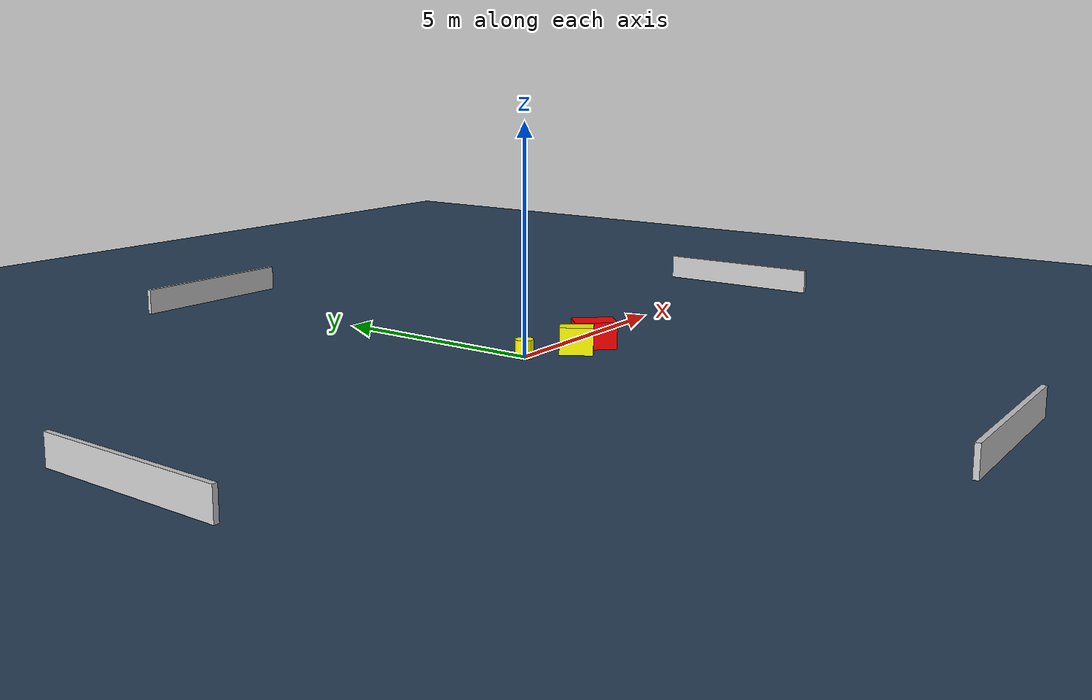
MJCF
<?xml version="1.0" ?>
<mujoco model="generated_environment">
  <option timestep="0.01" integrator="RK4" cone="elliptic"/>
  <default>
    <geom density="1"/>
  </default>
  <asset>
    <texture builtin="gradient" height="3072" name="skybox" rgb1="0.3 0.5 0.7" rgb2="0 0 0" type="skybox" width="512"/>
    <texture builtin="checker" height="300" name="groundplane" rgb1="0.2 0.3 0.4" rgb2="0.1 0.2 0.3" type="2d" width="300"/>
    <material name="groundplane" reflectance="0.2" texrepeat="5 5" texture="groundplane"/>
  </asset>
  <worldbody>
    <light dir="0 0 -1" directional="true" pos="0 0 1.5"/>
    <geom condim="3" friction="0.5 0.005 0.001" material="groundplane" name="floor" pos="0 0 0" size="0 0 0.05" type="plane"/>
    <body name="walls">
      <geom name="wall_1" condim="4" pos="-10.0 0.0 0.3" rgba="0.800000011920929 0.800000011920929 0.800000011920929 1.0" size="0.05 2.0 0.3" type="box"/>
      <geom name="wall_2" condim="4" pos="10.0 0.0 0.3" rgba="0.800000011920929 0.800000011920929 0.800000011920929 1.0" size="0.05 2.0 0.3" type="box"/>
      <geom name="wall_3" condim="4" pos="0.0 -10.0 0.3" rgba="0.800000011920929 0.800000011920929 0.800000011920929 1.0" size="2.0 0.05 0.3" type="box"/>
      <geom name="wall_4" condim="4" pos="0.0 10.0 0.3" rgba="0.800000011920929 0.800000011920929 0.800000011920929 1.0" size="2.0 0.05 0.3" type="box"/>
    </body>
    <body name="robot">
      <joint name="joint_x" type="slide" pos="0 0 0" axis="1 0 0"/>
      <joint name="joint_y" type="slide" pos="0 0 0" axis="0 1 0"/>
      <geom name="robot" type="cylinder" pos="0.0 0.0 0.2" size="0.2 0.2 0.0" mass="5.0" friction="1.0 0.005 0.0001" condim="4" rgba="1.0 1.0 0.0 1.0"/>
    </body>
    <body name="obstacle_1_movable">
      <geom name="obstacle_1_movable" condim="4" pos="0.9422238064543365 -0.7017446565099826 0.3" euler="0 0 211.17559261854208" friction="0.0 0.005 0.001" rgba="1.0 1.0 0.0 1.0" size="0.20207541813775684 0.36610931960170845 0.3" type="box" mass="0.1"/>
      <joint type="free"/>
    </body>
    <body name="obstacle_2_static">
      <geom name="obstacle_2_static" condim="4" pos="1.6499789819377315 -0.6889506321017501 0.3" euler="0 0 133.108086931293" friction="0.0 0.005 0.001" rgba="1.0 0.0 0.0 1.0" size="0.46386958163633785 0.2901010726682135 0.3" type="box"/>
    </body>
  </worldbody>
  <actuator>
    <motor name="actuator_x" joint="joint_x" gear="1" ctrlrange="-1 1"/>
    <motor name="actuator_y" joint="joint_y" gear="1" ctrlrange="-1 1"/>
  </actuator>
</mujoco>
